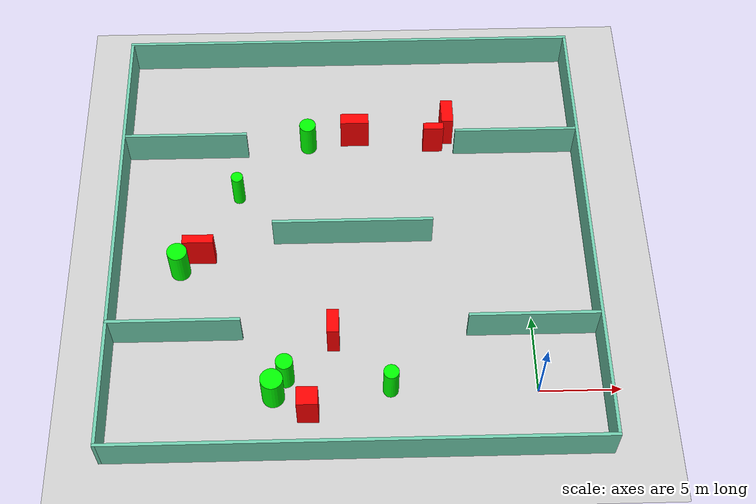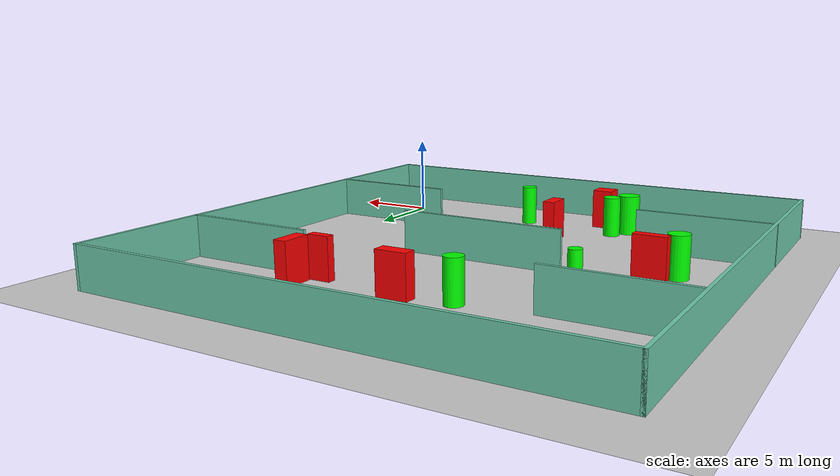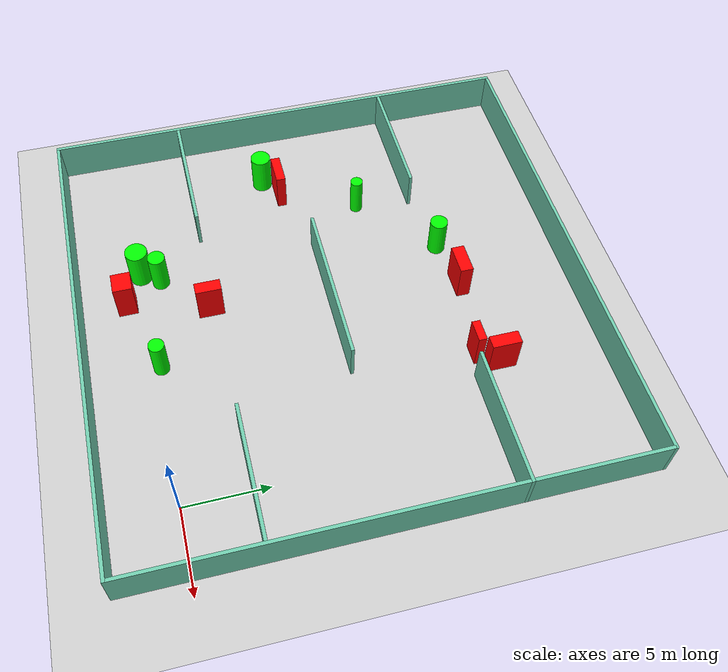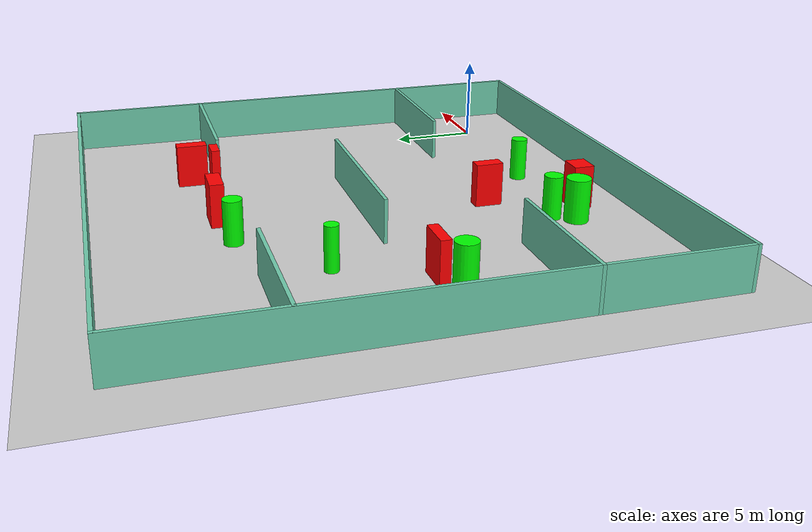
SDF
<sdf version="1.7">
 <world name="default">
  <light name="sun" type="directional">
   <pose>0 0 10 0 -0 0</pose>
   <diffuse>0.8 0.8 0.8 1</diffuse>
   <specular>0.2 0.2 0.2 1</specular>
   <attenuation>
    <range>1000</range>
    <constant>0.9</constant>
    <linear>0.01</linear>
    <quadratic>0.001</quadratic>
   </attenuation>
   <direction>-0.5 0.1 -0.9</direction>
   <spot><inner_angle>0</inner_angle><outer_angle>0</outer_angle><falloff>0</falloff></spot>
  </light>
  <model name="ground_plane">
   <static>1</static>
   <link name="link">
    <collision name="collision">
     <geometry><plane><normal>0 0 1</normal><size>100 100</size></plane></geometry>
     <surface>
      <contact><collide_bitmask>65535</collide_bitmask></contact>
      <friction><ode><mu>100</mu><mu2>50</mu2></ode></friction>
     </surface>
    </collision>
    <visual name="visual">
     <cast_shadows>0</cast_shadows>
     <geometry><plane><normal>0 0 1</normal><size>100 100</size></plane></geometry>
     <material>
      <script><uri>file://media/materials/scripts/gazebo.material</uri><name>Gazebo/Grey</name></script>
     </material>
    </visual>
   </link>
  </model>
  <gravity>0 0 -9.8</gravity>
  <magnetic_field>6e-06 2.3e-05 -4.2e-05</magnetic_field>
  <atmosphere type="adiabatic"/>
  <physics type="ode">
   <max_step_size>0.001</max_step_size>
   <real_time_factor>1</real_time_factor>
   <real_time_update_rate>1000</real_time_update_rate>
  </physics>
  <scene><ambient>0.4 0.4 0.4 1</ambient><background>0.7 0.7 0.7 1</background><shadows>1</shadows></scene>
  <spherical_coordinates>
   <surface_model>EARTH_WGS84</surface_model>
   <latitude_deg>0</latitude_deg>
   <longitude_deg>0</longitude_deg>
   <elevation>0</elevation>
   <heading_deg>0</heading_deg>
  </spherical_coordinates>
  <model name="my_base_walls">
   <link name="Wall_10">
    <collision name="Wall_10_Collision">
     <geometry><box><size>8.2 0.2 2.5</size></box></geometry>
     <pose>0 0 1.25 0 -0 0</pose>
    </collision>
    <visual name="Wall_10_Visual">
     <pose>0 0 1.25 0 -0 0</pose>
     <geometry><box><size>8.2 0.2 2.5</size></box></geometry>
     <material>
      <script><uri>file://media/materials/scripts/gazebo.material</uri><name>Gazebo/Grey</name></script>
      <ambient>0.435294 0.796078 0.67451 1</ambient>
     </material>
     <meta><layer>0</layer></meta>
    </visual>
    <pose>-11 -7 0 0 -0 0</pose>
   </link>
   <link name="Wall_12">
    <collision name="Wall_12_Collision">
     <geometry><box><size>8.2 0.2 2.5</size></box></geometry>
     <pose>0 0 1.25 0 -0 0</pose>
    </collision>
    <visual name="Wall_12_Visual">
     <pose>0 0 1.25 0 -0 0</pose>
     <geometry><box><size>8.2 0.2 2.5</size></box></geometry>
     <material>
      <script><uri>file://media/materials/scripts/gazebo.material</uri><name>Gazebo/Grey</name></script>
      <ambient>0.435294 0.796078 0.67451 1</ambient>
     </material>
     <meta><layer>0</layer></meta>
    </visual>
    <pose>-11 7 0 0 -0 0</pose>
   </link>
   <link name="Wall_14">
    <collision name="Wall_14_Collision">
     <geometry><box><size>8.2 0.2 2.5</size></box></geometry>
     <pose>0 0 1.25 0 -0 0</pose>
    </collision>
    <visual name="Wall_14_Visual">
     <pose>0 0 1.25 0 -0 0</pose>
     <geometry><box><size>8.2 0.2 2.5</size></box></geometry>
     <material>
      <script><uri>file://media/materials/scripts/gazebo.material</uri><name>Gazebo/Grey</name></script>
      <ambient>0.435294 0.796078 0.67451 1</ambient>
     </material>
     <meta><layer>0</layer></meta>
    </visual>
    <pose>11 7 0 0 -0 3.14159</pose>
   </link>
   <link name="Wall_16">
    <collision name="Wall_16_Collision">
     <geometry><box><size>10.2 0.2 2.5</size></box></geometry>
     <pose>0 0 1.25 0 -0 0</pose>
    </collision>
    <visual name="Wall_16_Visual">
     <pose>0 0 1.25 0 -0 0</pose>
     <geometry><box><size>10.2 0.2 2.5</size></box></geometry>
     <material>
      <script><uri>file://media/materials/scripts/gazebo.material</uri><name>Gazebo/Grey</name></script>
      <ambient>0.435294 0.796078 0.67451 1</ambient>
     </material>
     <meta><layer>0</layer></meta>
    </visual>
    <pose>0 0 0 0 -0 3.14159</pose>
   </link>
   <link name="Wall_2">
    <collision name="Wall_2_Collision">
     <geometry><box><size>30.2 0.2 2.5</size></box></geometry>
     <pose>0 0 1.25 0 -0 0</pose>
    </collision>
    <visual name="Wall_2_Visual">
     <pose>0 0 1.25 0 -0 0</pose>
     <geometry><box><size>30.2 0.2 2.5</size></box></geometry>
     <material>
      <script><uri>file://media/materials/scripts/gazebo.material</uri><name>Gazebo/Grey</name></script>
      <ambient>0.435294 0.796078 0.67451 1</ambient>
     </material>
     <meta><layer>0</layer></meta>
    </visual>
    <pose>0 -15 0 0 -0 3.14159</pose>
   </link>
   <link name="Wall_3">
    <collision name="Wall_3_Collision">
     <geometry><box><size>30.2 0.2 2.5</size></box></geometry>
     <pose>0 0 1.25 0 -0 0</pose>
    </collision>
    <visual name="Wall_3_Visual">
     <pose>0 0 1.25 0 -0 0</pose>
     <geometry><box><size>30.2 0.2 2.5</size></box></geometry>
     <material>
      <script><uri>file://media/materials/scripts/gazebo.material</uri><name>Gazebo/Grey</name></script>
      <ambient>0.435294 0.796078 0.67451 1</ambient>
     </material>
     <meta><layer>0</layer></meta>
    </visual>
    <pose>-15 0 0 0 -0 1.5708</pose>
   </link>
   <link name="Wall_4">
    <collision name="Wall_4_Collision">
     <geometry><box><size>30.2 0.2 2.5</size></box></geometry>
     <pose>0 0 1.25 0 -0 0</pose>
    </collision>
    <visual name="Wall_4_Visual">
     <pose>0 0 1.25 0 -0 0</pose>
     <geometry><box><size>30.2 0.2 2.5</size></box></geometry>
     <material>
      <script><uri>file://media/materials/scripts/gazebo.material</uri><name>Gazebo/Grey</name></script>
      <ambient>0.435294 0.796078 0.67451 1</ambient>
     </material>
     <meta><layer>0</layer></meta>
    </visual>
    <pose>0 15 0 0 -0 0</pose>
   </link>
   <link name="Wall_6">
    <collision name="Wall_6_Collision">
     <geometry><box><size>30.2 0.2 2.5</size></box></geometry>
     <pose>0 0 1.25 0 -0 0</pose>
    </collision>
    <visual name="Wall_6_Visual">
     <pose>0 0 1.25 0 -0 0</pose>
     <geometry><box><size>30.2 0.2 2.5</size></box></geometry>
     <material>
      <script><uri>file://media/materials/scripts/gazebo.material</uri><name>Gazebo/Grey</name></script>
      <ambient>0.435294 0.796078 0.67451 1</ambient>
     </material>
     <meta><layer>0</layer></meta>
    </visual>
    <pose>15 0 0 0 -0 1.5708</pose>
   </link>
   <link name="Wall_8">
    <collision name="Wall_8_Collision">
     <geometry><box><size>8.2 0.2 2.5</size></box></geometry>
     <pose>0 0 1.25 0 -0 0</pose>
    </collision>
    <visual name="Wall_8_Visual">
     <pose>0 0 1.25 0 -0 0</pose>
     <geometry><box><size>8.2 0.2 2.5</size></box></geometry>
     <material>
      <script><uri>file://media/materials/scripts/gazebo.material</uri><name>Gazebo/Grey</name></script>
      <ambient>0.435294 0.796078 0.67451 1</ambient>
     </material>
     <meta><layer>0</layer></meta>
    </visual>
    <pose>11 -7 0 0 -0 3.14159</pose>
   </link>
   <static>1</static>
   <pose>-11 11 0 0 -0 0</pose>
  </model>
  <model name="cylinder1">
   <static>1</static>
   <link name="link">
    <inertial>
     <mass>1</mass>
     <inertia><ixx>0.5</ixx><ixy>0</ixy><ixz>0</ixz><iyy>0.5</iyy><iyz>0</iyz><izz>1</izz></inertia>
    </inertial>
    <collision name="collision">
     <geometry><cylinder><radius>0.4696319291229323</radius><length>2.5</length></cylinder></geometry>
    </collision>
    <visual name="visual">
     <geometry><cylinder><radius>0.4696319291229323</radius><length>2.5</length></cylinder></geometry>
     <material>
      <ambient>0 1 0 1</ambient>
      <diffuse>0 1 0 1</diffuse>
      <specular>0.1 0.1 0.1 1</specular>
      <emissive>0 0 0 0</emissive>
     </material>
    </visual>
   </link>
   <pose>-8.902509015005236 0.25508541124840134 1.25 0 0 0</pose>
  </model>
  <model name="cylinder2">
   <static>1</static>
   <link name="link">
    <inertial>
     <mass>1</mass>
     <inertia><ixx>0.5</ixx><ixy>0</ixy><ixz>0</ixz><iyy>0.5</iyy><iyz>0</iyz><izz>1</izz></inertia>
    </inertial>
    <collision name="collision">
     <geometry><cylinder><radius>0.6284035431431112</radius><length>2.5</length></cylinder></geometry>
    </collision>
    <visual name="visual">
     <geometry><cylinder><radius>0.6284035431431112</radius><length>2.5</length></cylinder></geometry>
     <material>
      <ambient>0 1 0 1</ambient>
      <diffuse>0 1 0 1</diffuse>
      <specular>0.1 0.1 0.1 1</specular>
      <emissive>0 0 0 0</emissive>
     </material>
    </visual>
   </link>
   <pose>-21.994342234136028 8.88190599513108 1.25 0 0 0</pose>
  </model>
  <model name="cylinder3">
   <static>1</static>
   <link name="link">
    <inertial>
     <mass>1</mass>
     <inertia><ixx>0.5</ixx><ixy>0</ixy><ixz>0</ixz><iyy>0.5</iyy><iyz>0</iyz><izz>1</izz></inertia>
    </inertial>
    <collision name="collision">
     <geometry><cylinder><radius>0.5282347635924832</radius><length>2.5</length></cylinder></geometry>
    </collision>
    <visual name="visual">
     <geometry><cylinder><radius>0.5282347635924832</radius><length>2.5</length></cylinder></geometry>
     <material>
      <ambient>0 1 0 1</ambient>
      <diffuse>0 1 0 1</diffuse>
      <specular>0.1 0.1 0.1 1</specular>
      <emissive>0 0 0 0</emissive>
     </material>
    </visual>
   </link>
   <pose>-15.226379816427164 1.076743281061816 1.25 0 0 0</pose>
  </model>
  <model name="cylinder4">
   <static>1</static>
   <link name="link">
    <inertial>
     <mass>1</mass>
     <inertia><ixx>0.5</ixx><ixy>0</ixy><ixz>0</ixz><iyy>0.5</iyy><iyz>0</iyz><izz>1</izz></inertia>
    </inertial>
    <collision name="collision">
     <geometry><cylinder><radius>0.38815127738631616</radius><length>2.5</length></cylinder></geometry>
    </collision>
    <visual name="visual">
     <geometry><cylinder><radius>0.38815127738631616</radius><length>2.5</length></cylinder></geometry>
     <material>
      <ambient>0 1 0 1</ambient>
      <diffuse>0 1 0 1</diffuse>
      <specular>0.1 0.1 0.1 1</specular>
      <emissive>0 0 0 0</emissive>
     </material>
    </visual>
   </link>
   <pose>-18.426429394628045 14.506276654130062 1.25 0 0 0</pose>
  </model>
  <model name="cylinder5">
   <static>1</static>
   <link name="link">
    <inertial>
     <mass>1</mass>
     <inertia><ixx>0.5</ixx><ixy>0</ixy><ixz>0</ixz><iyy>0.5</iyy><iyz>0</iyz><izz>1</izz></inertia>
    </inertial>
    <collision name="collision">
     <geometry><cylinder><radius>0.5395249355581421</radius><length>2.5</length></cylinder></geometry>
    </collision>
    <visual name="visual">
     <geometry><cylinder><radius>0.5395249355581421</radius><length>2.5</length></cylinder></geometry>
     <material>
      <ambient>0 1 0 1</ambient>
      <diffuse>0 1 0 1</diffuse>
      <specular>0.1 0.1 0.1 1</specular>
      <emissive>0 0 0 0</emissive>
     </material>
    </visual>
   </link>
   <pose>-13.869976867903645 18.634622214122345 1.25 0 0 0</pose>
  </model>
  <model name="cylinder6">
   <static>1</static>
   <link name="link">
    <inertial>
     <mass>1</mass>
     <inertia><ixx>0.5</ixx><ixy>0</ixy><ixz>0</ixz><iyy>0.5</iyy><iyz>0</iyz><izz>1</izz></inertia>
    </inertial>
    <collision name="collision">
     <geometry><cylinder><radius>0.6831754497121011</radius><length>2.5</length></cylinder></geometry>
    </collision>
    <visual name="visual">
     <geometry><cylinder><radius>0.6831754497121011</radius><length>2.5</length></cylinder></geometry>
     <material>
      <ambient>0 1 0 1</ambient>
      <diffuse>0 1 0 1</diffuse>
      <specular>0.1 0.1 0.1 1</specular>
      <emissive>0 0 0 0</emissive>
     </material>
    </visual>
   </link>
   <pose>-15.963111951618757 -0.05574135105070299 1.25 0 0 0</pose>
  </model>
  <model name="box1">
   <static>1</static>
   <link name="link">
    <inertial>
     <mass>1</mass>
     <inertia><ixx>0.083</ixx><ixy>0</ixy><ixz>0</ixz><iyy>0.083</iyy><iyz>0</iyz><izz>0.083</izz></inertia>
    </inertial>
    <collision name="collision">
     <geometry><box><size>0.7437968692759457 1.5654620668581078 2.5</size></box></geometry>
    </collision>
    <visual name="visual">
     <geometry><box><size>0.7437968692759457 1.5654620668581078 2.5</size></box></geometry>
     <material>
      <ambient>1 0 0 1</ambient>
      <diffuse>1 0 0 1</diffuse>
      <specular>0.1 0.1 0.1 1</specular>
      <emissive>0 0 0 0</emissive>
     </material>
    </visual>
    <sensor name="my_contact" type="contact">
     <contact><collision>box_collision</collision><topic>__default_topic__</topic></contact>
    </sensor>
   </link>
   <pose>-12.32368872612062 3.7665395173472387 1.25 0 0 0</pose>
  </model>
  <model name="box2">
   <static>1</static>
   <link name="link">
    <inertial>
     <mass>1</mass>
     <inertia><ixx>0.083</ixx><ixy>0</ixy><ixz>0</ixz><iyy>0.083</iyy><iyz>0</iyz><izz>0.083</izz></inertia>
    </inertial>
    <collision name="collision">
     <geometry><box><size>1.955271980026113 0.5852442340721485 2.5</size></box></geometry>
    </collision>
    <visual name="visual">
     <geometry><box><size>1.955271980026113 0.5852442340721485 2.5</size></box></geometry>
     <material>
      <ambient>1 0 0 1</ambient>
      <diffuse>1 0 0 1</diffuse>
      <specular>0.1 0.1 0.1 1</specular>
      <emissive>0 0 0 0</emissive>
     </material>
    </visual>
    <sensor name="my_contact" type="contact">
     <contact><collision>box_collision</collision><topic>__default_topic__</topic></contact>
    </sensor>
   </link>
   <pose>-20.748051746414028 9.800484345138262 1.25 0 0 0</pose>
  </model>
  <model name="box3">
   <static>1</static>
   <link name="link">
    <inertial>
     <mass>1</mass>
     <inertia><ixx>0.083</ixx><ixy>0</ixy><ixz>0</ixz><iyy>0.083</iyy><iyz>0</iyz><izz>0.083</izz></inertia>
    </inertial>
    <collision name="collision">
     <geometry><box><size>1.3221009365005474 0.5002681605742496 2.5</size></box></geometry>
    </collision>
    <visual name="visual">
     <geometry><box><size>1.3221009365005474 0.5002681605742496 2.5</size></box></geometry>
     <material>
      <ambient>1 0 0 1</ambient>
      <diffuse>1 0 0 1</diffuse>
      <specular>0.1 0.1 0.1 1</specular>
      <emissive>0 0 0 0</emissive>
     </material>
    </visual>
    <sensor name="my_contact" type="contact">
     <contact><collision>box_collision</collision><topic>__default_topic__</topic></contact>
    </sensor>
   </link>
   <pose>-5.498906161852467 18.382833966311317 1.25 0 0 0</pose>
  </model>
  <model name="box4">
   <static>1</static>
   <link name="link">
    <inertial>
     <mass>1</mass>
     <inertia><ixx>0.083</ixx><ixy>0</ixy><ixz>0</ixz><iyy>0.083</iyy><iyz>0</iyz><izz>0.083</izz></inertia>
    </inertial>
    <collision name="collision">
     <geometry><box><size>1.2839360797011399 1.1613668401816373 2.5</size></box></geometry>
    </collision>
    <visual name="visual">
     <geometry><box><size>1.2839360797011399 1.1613668401816373 2.5</size></box></geometry>
     <material>
      <ambient>1 0 0 1</ambient>
      <diffuse>1 0 0 1</diffuse>
      <specular>0.1 0.1 0.1 1</specular>
      <emissive>0 0 0 0</emissive>
     </material>
    </visual>
    <sensor name="my_contact" type="contact">
     <contact><collision>box_collision</collision><topic>__default_topic__</topic></contact>
    </sensor>
   </link>
   <pose>-13.878607857419532 -1.1766545558776902 1.25 0 0 0</pose>
  </model>
  <model name="box5">
   <static>1</static>
   <link name="link">
    <inertial>
     <mass>1</mass>
     <inertia><ixx>0.083</ixx><ixy>0</ixy><ixz>0</ixz><iyy>0.083</iyy><iyz>0</iyz><izz>0.083</izz></inertia>
    </inertial>
    <collision name="collision">
     <geometry><box><size>0.7846859242194444 1.7566033134347347 2.5</size></box></geometry>
    </collision>
    <visual name="visual">
     <geometry><box><size>0.7846859242194444 1.7566033134347347 2.5</size></box></geometry>
     <material>
      <ambient>1 0 0 1</ambient>
      <diffuse>1 0 0 1</diffuse>
      <specular>0.1 0.1 0.1 1</specular>
      <emissive>0 0 0 0</emissive>
     </material>
    </visual>
    <sensor name="my_contact" type="contact">
     <contact><collision>box_collision</collision><topic>__default_topic__</topic></contact>
    </sensor>
   </link>
   <pose>-4.549577847600052 19.62650721685977 1.25 0 0 0</pose>
  </model>
  <model name="box6">
   <static>1</static>
   <link name="link">
    <inertial>
     <mass>1</mass>
     <inertia><ixx>0.083</ixx><ixy>0</ixy><ixz>0</ixz><iyy>0.083</iyy><iyz>0</iyz><izz>0.083</izz></inertia>
    </inertial>
    <collision name="collision">
     <geometry><box><size>1.8632158995265278 0.7893730688991184 2.5</size></box></geometry>
    </collision>
    <visual name="visual">
     <geometry><box><size>1.8632158995265278 0.7893730688991184 2.5</size></box></geometry>
     <material>
      <ambient>1 0 0 1</ambient>
      <diffuse>1 0 0 1</diffuse>
      <specular>0.1 0.1 0.1 1</specular>
      <emissive>0 0 0 0</emissive>
     </material>
    </visual>
    <sensor name="my_contact" type="contact">
     <contact><collision>box_collision</collision><topic>__default_topic__</topic></contact>
    </sensor>
   </link>
   <pose>-10.743089540168702 19.10992275789184 1.25 0 0 0</pose>
  </model>
 </world>
</sdf>
